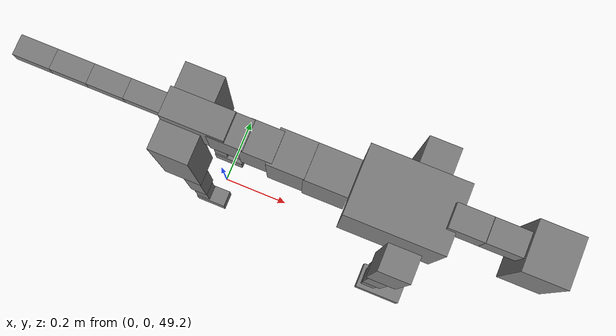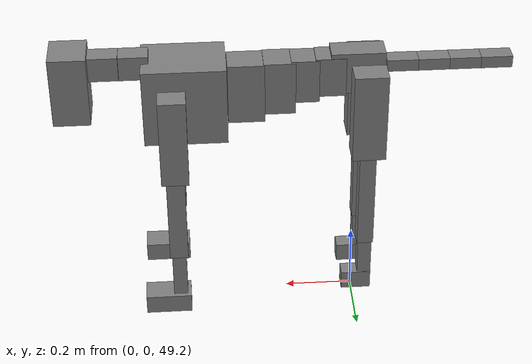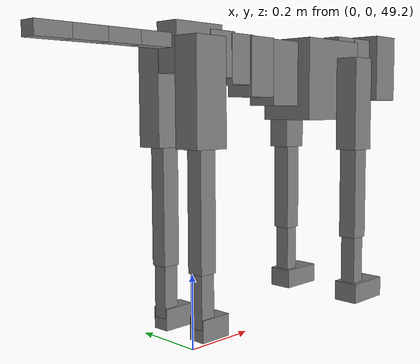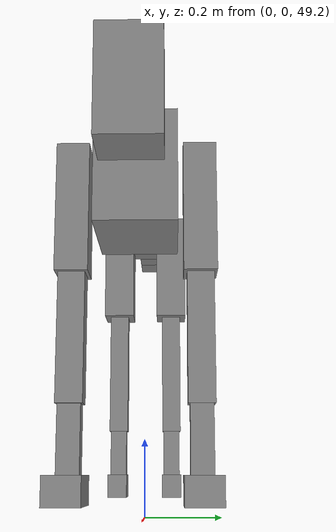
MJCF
<mujoco model="dog">

    <default>
        <joint armature="0.02" stiffness="1" damping="0.2" limited="true"/>
        <geom condim="3" friction="1 0.05 0.05" margin="0.01"/>
        <motor ctrllimited="true" ctrlrange="-1.0 1.0" forcelimited="true" gear="50"/>
    </default>

    <compiler inertiafromgeom="true" angle="radian"/>

    <option timestep="0.016" iterations="50" tolerance="1e-10" solver="Newton" jacobian="dense" cone="pyramidal"/>

    <size nconmax="20000" njmax="60000" nstack="5000000"/>
    <visual>
        <map force="0.1" zfar="30"/>
        <rgba haze="0.15 0.25 0.35 1"/>
        <quality shadowsize="2048"/>
        <global offwidth="800" offheight="800"/>
    </visual>

    <asset>
        <texture type="skybox" builtin="gradient" rgb1="0.3 0.5 0.7" rgb2="0 0 0" width="512" height="512"/>
        <texture name="texplane" type="2d" builtin="checker" rgb1=".2 .3 .4" rgb2=".1 0.15 0.2" width="512" height="512"
                 mark="cross" markrgb=".8 .8 .8"/>
        <texture name="texgeom" type="cube" builtin="flat" mark="cross" width="127" height="1278" rgb1="0.8 0.6 0.4"
                 rgb2="0.8 0.6 0.4" markrgb="1 1 1" random="0.01"/>

        <material name="matplane" reflectance="0.3" texture="texplane" texrepeat="1 1" texuniform="true"/>
        <material name="matgeom" texture="texgeom" texuniform="true" rgba="0.8 0.6 .4 1"/>
    </asset>

    <worldbody>
        <geom name="floor" pos="0 0 0" size="0 0 .25" type="plane" material="matplane" condim="3"/>

        <light directional="false" diffuse=".2 .2 .2" specular="0 0 0" pos="0 0 5" dir="0 0 -1" castshadow="false"/>
        <light mode="targetbodycom" target="torso" directional="false" diffuse=".8 .8 .8" specular="0.3 0.3 0.3"
               pos="0 0 4.0" dir="0 0 -1"/>

        <body name="root" pos="0 0 50">
            <freejoint name="root_1"/>
            <geom type="box" pos="0 0 -0.02" size="0.0774  0.0358  0.063" density="2030"/>

            <body name="spine1" pos="0.054 0 0">
                <joint name="spine1_y" axis="0 1 0" range="0 0.7" limited="true"/>
                <geom type="box" pos="0.02375 0 -0.03" size="0.04375  0.0375  0.05985" density="2030"/>

                <body name="spine2" pos="0.0612 0 0">
                    <joint name="spine2_y" axis="0 1 0" range="-0.15 0.15" limited="true"/>
                    <geom type="box" pos="0.03555  0  -0.04" size="0.04055  0.039  0.06615" density="2030"/>

                    <body name="spine3" pos="0.0730 0 0">
                        <joint name="spine3_y" axis="0 1 0" range="-0.15 0.15" limited="true"/>
                        <geom type="box" pos="0.03555  0  -0.057" size="0.04555  0.0445  0.081" density="2030"/>

                        <body name="spine4" pos="0.0780 0 0">
                            <joint name="spine4_y" axis="0 1 0" range="-0.15 0.15" limited="true"/>
                            <geom type="box" pos="0.05265  0  -0.07" size="0.05265  0.045  0.09135" density="2030"/>

                            <body name="torso" pos="0.1082 0 0">
                                <joint name="torso_y" axis="0 1 0" range="-0.15 0.15" limited="true"/>
                                <geom type="box" pos="0.11925  0  -0.085" size="0.11925  0.085  0.11745"
                                      density="2030"/>

                                <body name="neck1" pos="0.2160  0   0.0180">
                                    <joint name="neck1_y" axis="0 1 0" range="-1.2  -1" limited="true"/>
                                    <geom type="box" pos="0.0423  0  0" size="0.0423  0.03  0.036" density="2325"/>

                                    <body name="neck2" pos="0.0853  0  0">
                                        <joint name="neck2_y" axis="0 1 0" range="0.1  0" limited="true"/>
                                        <geom type="box" pos="0.0423  0  0" size="0.0423  0.03  0.036" density="2325"/>

                                        <body name="head" pos="0.0853  0  0">
                                            <joint name="head_y" axis="0 1 0" range="-0.3  -0.2" limited="true"/>
                                            <geom type="box" pos="0.0531  0  -0.055" size="0.0531  0.06  0.1044"
                                                  density="4030"/>

                                        </body>
                                    </body>
                                </body>

                                <body name="front_shoulder" pos="0.156  0   -0.0480">
                                    <joint name="front_shoulder_y" axis="0 1 0" range="-1 1.5" limited="true"/>
                                    <geom type="box" pos="0 0.13 -0.1081" size="0.0396  0.0338  0.1347" density="1158"/>
                                    <geom type="box" pos="0 -0.13 -0.1081" size="0.0396  0.0338  0.1347"
                                          density="1158"/>

                                    <body name="front_elbow" pos="0  0  -0.2161">
                                        <joint name="front_elbow_y" axis="0 1 0" range="-2 0" limited="true"/>
                                        <geom type="box" pos="0 0.13 -0.1453" size="0.0267  0.0273  0.1453"
                                              density="1081"/>
                                        <geom type="box" pos="0 -0.13 -0.1453" size="0.0267  0.0273  0.1453"
                                              density="1081"/>

                                        <body name="front_wrist" pos="0  0  -0.2905">
                                            <joint name="front_wrist_y" axis="0 1 0" range="-0.2 0" limited="true"/>
                                            <geom type="box" pos="0 0.13 -0.0764" size="0.0208  0.0232  0.0895"
                                                  density="1664"/>
                                            <geom type="box" pos="0 -0.13 -0.0764" size="0.0208  0.0232  0.0895"
                                                  density="1664"/>

                                            <body name="front_finger_end" pos="0  0  -0.1528">
                                                <joint name="front_finger_y" axis="0 1 0" range="-0.4 1"
                                                       limited="true"/>
                                                <geom type="box" pos="0.0368  0.13  -0.0140"
                                                      size="0.0675  0.0368  0.0290" density="1515"/>
                                                <geom type="box" pos="0.0368  -0.13  -0.0140"
                                                      size="0.0675  0.0368  0.0290" density="1515"/>

                                            </body>

                                        </body>
                                    </body>
                                </body>

                            </body>
                        </body>
                    </body>
                </body>
            </body>

            <body name="back_hip" pos="-0.03 0 -0.018">
                <joint name="back_hip_y" axis="0 1 0" range="-1.5 0.3" limited="true"/>
                <geom type="box" pos="0 0.07 -0.1139" size="0.0490  0.0384  0.1367" density="1154"/>
                <geom type="box" pos="0 -0.07 -0.1139" size="0.0490  0.0384  0.1367" density="1154"/>

                <body name="back_knee" pos="0  0  -0.2277">
                    <joint name="back_knee_y" axis="0 1 0" range="0 2.8" limited="true"/>
                    <geom type="box" pos="0 0.07 -0.1583" size="0.0242  0.0238  0.1738" density="1227"/>
                    <geom type="box" pos="0 -0.07 -0.1583" size="0.0242  0.0238  0.1738" density="1227"/>

                    <body name="back_ankle" pos="0  0  -0.3166">
                        <joint name="back_ankle_y" axis="0 1 0" range="-2.2 0" limited="true"/>
                        <geom type="box" pos="0 0.07 -0.0716" size="0.0205  0.0205  0.0829" density="1284"/>
                        <geom type="box" pos="0 -0.07 -0.0716" size="0.0205  0.0205  0.0829" density="1284"/>

                        <body name="back_toe_end" pos="0  0  -0.1432">
                            <joint name="back_toe_y" axis="0 1 0" range="-0.4 1" limited="true"/>
                            <geom type="box" pos="0.0241  0.07  -0.0138" size="0.0442  0.0241  0.0288" density="1515"/>
                            <geom type="box" pos="0.0241  -0.07  -0.0138" size="0.0442  0.0241  0.0288" density="1515"/>

                        </body>
                    </body>
                </body>
            </body>

            <body name="tail1" pos="-0.074 0 -0.006">
                <joint name="tail1_y" axis="0 1 0" range="-0.2 0.2" limited="true"/>
                <geom type="box" pos="-0.0536  0  0" size="0.045  0.025  0.0175" density="1587"/>

                <body name="tail2" pos="-0.09 0 0">
                    <joint name="tail2_y" axis="0 1 0" range="-0.2 0.2" limited="true"/>
                    <geom type="box" pos="-0.0536  0  0" size="0.045  0.025  0.0175" density="1587"/>

                    <body name="tail3" pos="-0.09 0 0">
                        <joint name="tail3_y" axis="0 1 0" range="-0.2 0.2" limited="true"/>
                        <geom type="box" pos="-0.0536  0  0" size="0.045  0.025  0.0175" density="1587"/>

                        <body name="tail4" pos="-0.09 0 0">
                            <joint name="tail4_y" axis="0 1 0" range="-0.2 0.2" limited="true"/>
                            <geom type="box" pos="-0.0536  0  0" size="0.045  0.025  0.0175" density="1587"/>

                        </body>
                    </body>
                </body>
            </body>
        </body>
    </worldbody>

    <actuator>
        <motor joint="spine1_y" forcerange="-150 150     "/>
        <motor joint="spine2_y" forcerange="-150 150     "/>
        <motor joint="spine3_y" forcerange="-150 150     "/>
        <motor joint="spine4_y" forcerange="-150 150     "/>
        <motor joint="torso_y" forcerange="-150 150     "/>
        <motor joint="neck1_y" forcerange="-100 100       "/>
        <motor joint="neck2_y" forcerange="-100 100       "/>
        <motor joint="head_y" forcerange="-150 150       "/>
        <motor joint="front_shoulder_y" forcerange="-189.26 136.13"/>
        <motor joint="front_elbow_y" forcerange="-156.13 142.46"/>
        <motor joint="front_wrist_y" forcerange="-109.19 76.02"/>
        <motor joint="front_finger_y" forcerange="-81.18 75.30"/>
        <motor joint="back_hip_y" forcerange="-364.97 347.05"/>
        <motor joint="back_knee_y" forcerange="-222.81 323.75"/>
        <motor joint="back_angle_y" forcerange="-63.54 164.03"/>
        <motor joint="back_toe_y" forcerange="-81.08 31.73"/>
        <motor joint="tail1_y" forcerange="-50 50     "/>
        <motor joint="tail2_y" forcerange="-50 50     "/>
        <motor joint="tail3_y" forcerange="-50 50     "/>
        <motor joint="tail4_y" forcerange="-50 50     "/>
    </actuator>
</mujoco>
